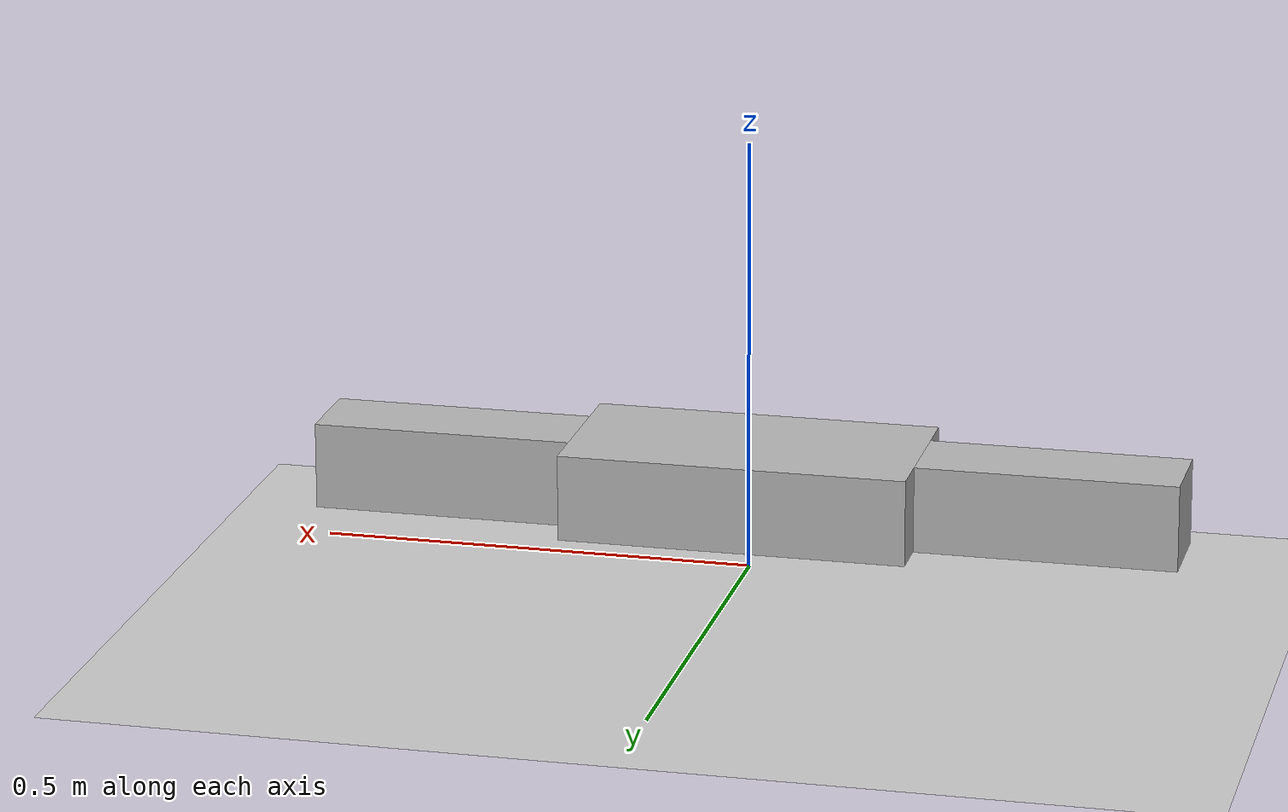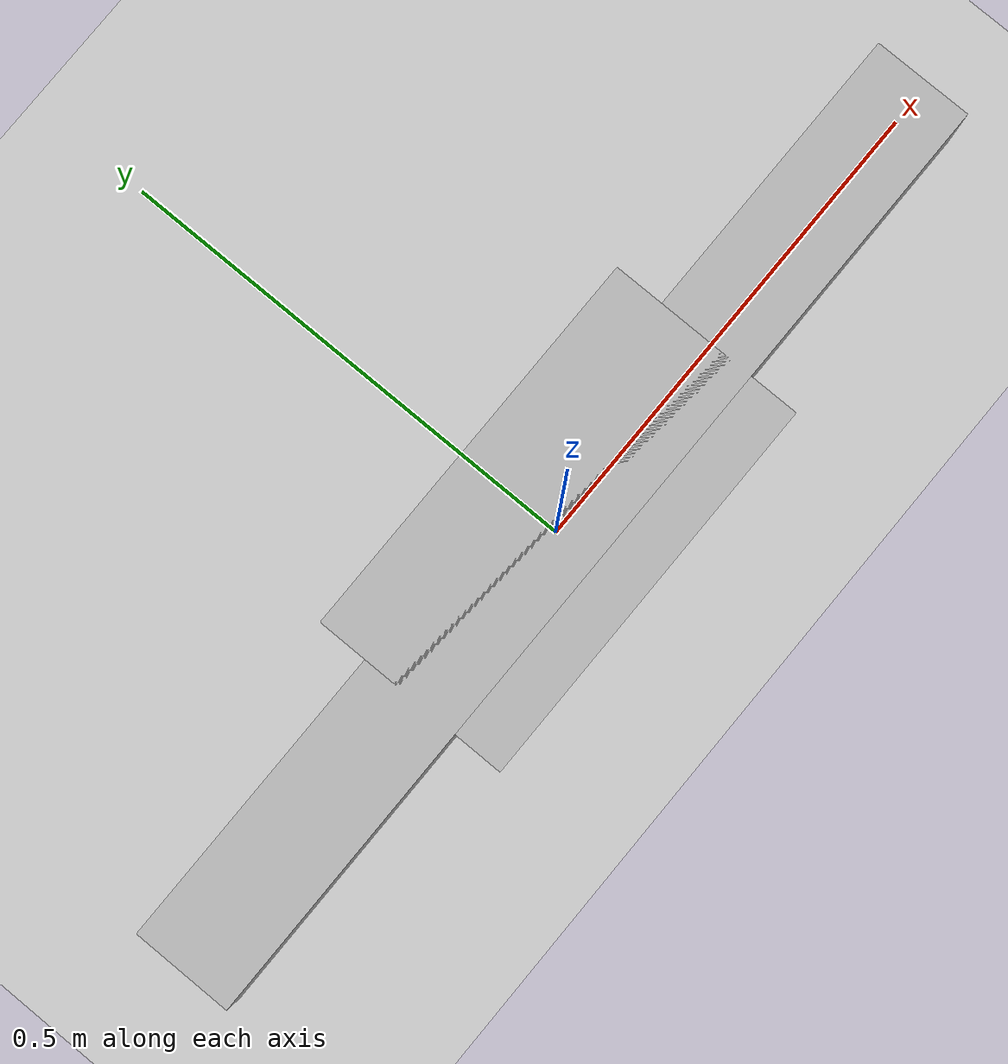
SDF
<?xml version="1.0" ?>
<sdf version="1.4">
  <world name="default">
    <include>
      <uri>model://ground_plane</uri>
    </include>

    <include>
      <uri>model://sun</uri>
    </include>

    <!-- reference to your plugin -->
    <model name="fake_car">
        <link name='chassis'>
            <pose>0 0 .1 0 0 0</pose>

            <collision name='collision'>
              <geometry>
                <box>
                  <size>.4 .2 .1</size>
                </box>
              </geometry>
            </collision>

            <visual name='visual'>
              <geometry>
                <box>
                  <size>.4 .2 .1</size>
                </box>
              </geometry>
            </visual>
          </link>
          <link name='bar'>
					<pose>0 0 .1 0 0 0</pose>
            <collision name='collisionbar'>
              <geometry>
                <box>
                  <size>1 .1 .1</size>
                </box>
              </geometry>
            </collision>

            <visual name='visualbar'>
              <geometry>
                <box>
                  <size>1 .1 .1</size>
                </box>
              </geometry>
            </visual>
          </link>

        <joint name="bar_joint" type="revolute">
          <parent>chassis</parent>
        	<child>bar</child>
        	<pose>0 0.5 0 0 0 0</pose>
        	<axis>
            <xyz>0 0 1</xyz>
        	</axis>
        </joint>

      <!-- Attach the plugin to this model -->
      <plugin name="fake_car_plugin" filename="libfake_car_plugin.so"/>
    </model>

  </world>
</sdf>
